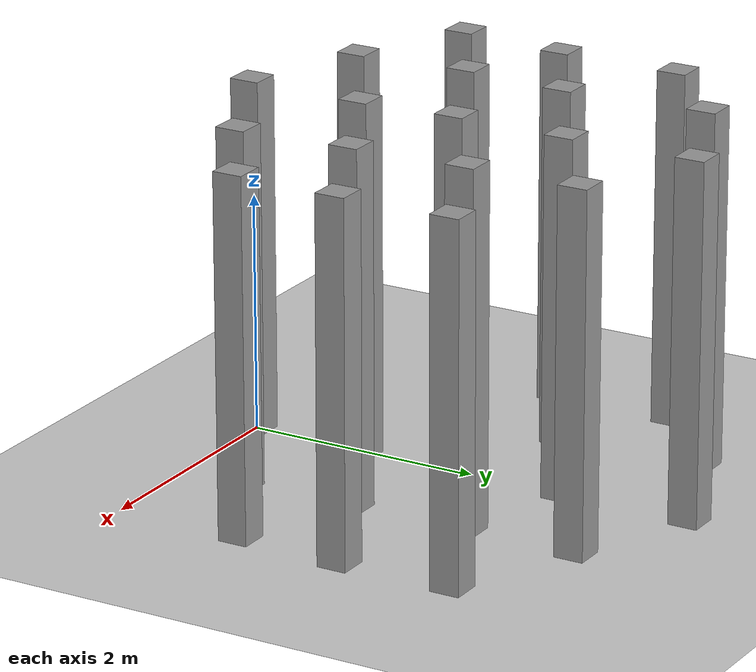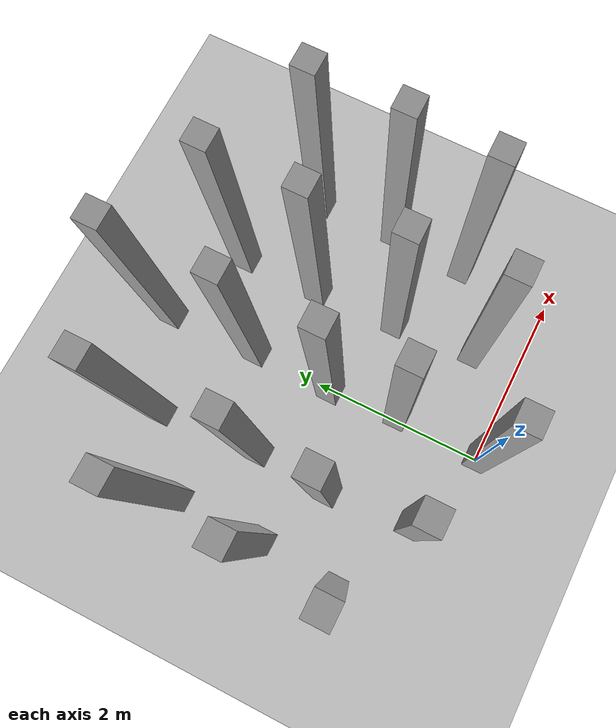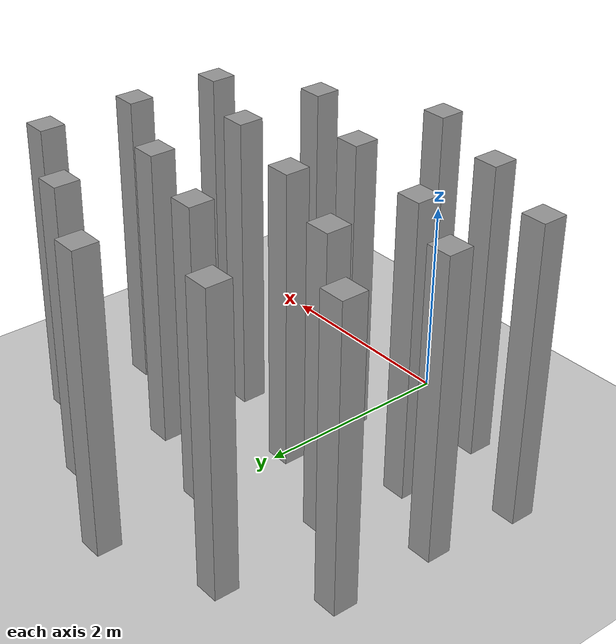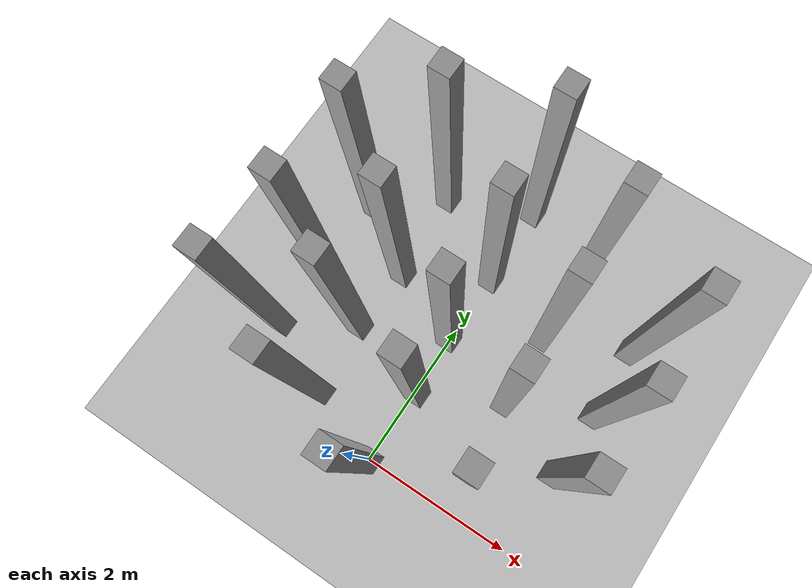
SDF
<sdf version="1.6">
 <world name="default">
  <model name="ground_plane">
   <static>1</static>
   <link name="link">
    <collision name="collision">
     <geometry><plane><normal>0 0 1</normal><size>100 100</size></plane></geometry>
     <surface><friction><ode><mu>100</mu><mu2>50</mu2></ode></friction></surface>
    </collision>
    <visual name="visual">
     <cast_shadows>0</cast_shadows>
     <geometry><plane><normal>0 0 1</normal><size>100 100</size></plane></geometry>
     <material>
      <script><uri>file://media/materials/scripts/gazebo.material</uri><name>Gazebo/Grey</name></script>
     </material>
    </visual>
   </link>
  </model>
  <model name="box_2">
   <link name="link">
    <pose>0 0 1 0 -0 0</pose>
    <inertial>
     <mass>1</mass>
     <inertia><ixx>5.16667</ixx><ixy>0</ixy><ixz>0</ixz><iyy>5.16667</iyy><iyz>0</iyz><izz>5.16667</izz></inertia>
     <pose>0 0 1 0 -0 0</pose>
    </inertial>
    <visual name="ModelPreview_4::link::visual_1">
     <geometry><box><size>0.25 0.25 3</size></box></geometry>
     <material>
      <script><name>Gazebo/Grey</name><uri>file://media/materials/scripts/gazebo.material</uri></script>
      <ambient>0.3 0.3 0.3 1</ambient>
      <diffuse>0.7 0.7 0.7 1</diffuse>
      <specular>0.01 0.01 0.01 1</specular>
      <emissive>0 0 0 1</emissive>
      <shader type="vertex"><normal_map>__default__</normal_map></shader>
     </material>
    </visual>
    <visual name="visual">
     <geometry><box><size>0.25 0.25 3</size></box></geometry>
     <material>
      <script><name>Gazebo/Grey</name><uri>file://media/materials/scripts/gazebo.material</uri></script>
      <ambient>0.3 0.3 0.3 1</ambient>
      <diffuse>0.7 0.7 0.7 1</diffuse>
      <specular>0.01 0.01 0.01 1</specular>
      <emissive>0 0 0 1</emissive>
      <shader type="vertex"><normal_map>__default__</normal_map></shader>
     </material>
    </visual>
    <collision name="collision">
     <geometry><box><size>0.25 0.25 3</size></box></geometry>
     <surface>
      <friction>
       <ode><mu>1</mu><mu2>1</mu2><fdir1>0 0 0</fdir1><slip1>0</slip1><slip2>0</slip2></ode>
       <torsional>
        <coefficient>1</coefficient>
        <patch_radius>0</patch_radius>
        <surface_radius>0</surface_radius>
        <use_patch_radius>1</use_patch_radius>
        <ode><slip>0</slip></ode>
       </torsional>
      </friction>
      <bounce><restitution_coefficient>0</restitution_coefficient><threshold>1e+06</threshold></bounce>
      <contact>
       <collide_without_contact>0</collide_without_contact>
       <collide_without_contact_bitmask>1</collide_without_contact_bitmask>
       <collide_bitmask>1</collide_bitmask>
       <ode>
        <soft_cfm>0</soft_cfm>
        <soft_erp>0.2</soft_erp>
        <kp>1e+13</kp>
        <kd>1</kd>
        <max_vel>0.01</max_vel>
        <min_depth>0</min_depth>
       </ode>
       <bullet>
        <split_impulse>1</split_impulse>
        <split_impulse_penetration_threshold>-0.01</split_impulse_penetration_threshold>
        <soft_cfm>0</soft_cfm>
        <soft_erp>0.2</soft_erp>
        <kp>1e+13</kp>
        <kd>1</kd>
       </bullet>
      </contact>
     </surface>
    </collision>
   </link>
   <static>0</static>
   <pose>0.016632 0.002544 0.500001 2e-06 -6e-06 -0.000172</pose>
  </model>
  <model name="box_2_7">
   <link name="link">
    <pose>0 0 1 0 -0 0</pose>
    <inertial>
     <mass>1</mass>
     <inertia><ixx>5.16667</ixx><ixy>0</ixy><ixz>0</ixz><iyy>5.16667</iyy><iyz>0</iyz><izz>5.16667</izz></inertia>
     <pose>0 0 1 0 -0 0</pose>
    </inertial>
    <visual name="ModelPreview_4::link::visual_1">
     <geometry><box><size>0.25 0.25 3</size></box></geometry>
     <material>
      <script><name>Gazebo/Grey</name><uri>file://media/materials/scripts/gazebo.material</uri></script>
      <ambient>0.3 0.3 0.3 1</ambient>
      <diffuse>0.7 0.7 0.7 1</diffuse>
      <specular>0.01 0.01 0.01 1</specular>
      <emissive>0 0 0 1</emissive>
      <shader type="vertex"><normal_map>__default__</normal_map></shader>
     </material>
    </visual>
    <visual name="visual">
     <geometry><box><size>0.25 0.25 3</size></box></geometry>
     <material>
      <script><name>Gazebo/Grey</name><uri>file://media/materials/scripts/gazebo.material</uri></script>
      <ambient>0.3 0.3 0.3 1</ambient>
      <diffuse>0.7 0.7 0.7 1</diffuse>
      <specular>0.01 0.01 0.01 1</specular>
      <emissive>0 0 0 1</emissive>
      <shader type="vertex"><normal_map>__default__</normal_map></shader>
     </material>
    </visual>
    <collision name="collision">
     <geometry><box><size>0.25 0.25 3</size></box></geometry>
     <surface>
      <friction>
       <ode><mu>1</mu><mu2>1</mu2><fdir1>0 0 0</fdir1><slip1>0</slip1><slip2>0</slip2></ode>
       <torsional>
        <coefficient>1</coefficient>
        <patch_radius>0</patch_radius>
        <surface_radius>0</surface_radius>
        <use_patch_radius>1</use_patch_radius>
        <ode><slip>0</slip></ode>
       </torsional>
      </friction>
      <bounce><restitution_coefficient>0</restitution_coefficient><threshold>1e+06</threshold></bounce>
      <contact>
       <collide_without_contact>0</collide_without_contact>
       <collide_without_contact_bitmask>1</collide_without_contact_bitmask>
       <collide_bitmask>1</collide_bitmask>
       <ode>
        <soft_cfm>0</soft_cfm>
        <soft_erp>0.2</soft_erp>
        <kp>1e+13</kp>
        <kd>1</kd>
        <max_vel>0.01</max_vel>
        <min_depth>0</min_depth>
       </ode>
       <bullet>
        <split_impulse>1</split_impulse>
        <split_impulse_penetration_threshold>-0.01</split_impulse_penetration_threshold>
        <soft_cfm>0</soft_cfm>
        <soft_erp>0.2</soft_erp>
        <kp>1e+13</kp>
        <kd>1</kd>
       </bullet>
      </contact>
     </surface>
    </collision>
   </link>
   <static>0</static>
   <pose>0.048347 1.01829 0.5 -1e-06 -0 -0.000146</pose>
  </model>
  <model name="box_2_8">
   <link name="link">
    <pose>0 0 1 0 -0 0</pose>
    <inertial>
     <mass>1</mass>
     <inertia><ixx>5.16667</ixx><ixy>0</ixy><ixz>0</ixz><iyy>5.16667</iyy><iyz>0</iyz><izz>5.16667</izz></inertia>
     <pose>0 0 1 0 -0 0</pose>
    </inertial>
    <visual name="ModelPreview_4::link::visual_1">
     <geometry><box><size>0.25 0.25 3</size></box></geometry>
     <material>
      <script><name>Gazebo/Grey</name><uri>file://media/materials/scripts/gazebo.material</uri></script>
      <ambient>0.3 0.3 0.3 1</ambient>
      <diffuse>0.7 0.7 0.7 1</diffuse>
      <specular>0.01 0.01 0.01 1</specular>
      <emissive>0 0 0 1</emissive>
      <shader type="vertex"><normal_map>__default__</normal_map></shader>
     </material>
    </visual>
    <visual name="visual">
     <geometry><box><size>0.25 0.25 3</size></box></geometry>
     <material>
      <script><name>Gazebo/Grey</name><uri>file://media/materials/scripts/gazebo.material</uri></script>
      <ambient>0.3 0.3 0.3 1</ambient>
      <diffuse>0.7 0.7 0.7 1</diffuse>
      <specular>0.01 0.01 0.01 1</specular>
      <emissive>0 0 0 1</emissive>
      <shader type="vertex"><normal_map>__default__</normal_map></shader>
     </material>
    </visual>
    <collision name="collision">
     <geometry><box><size>0.25 0.25 3</size></box></geometry>
     <surface>
      <friction>
       <ode><mu>1</mu><mu2>1</mu2><fdir1>0 0 0</fdir1><slip1>0</slip1><slip2>0</slip2></ode>
       <torsional>
        <coefficient>1</coefficient>
        <patch_radius>0</patch_radius>
        <surface_radius>0</surface_radius>
        <use_patch_radius>1</use_patch_radius>
        <ode><slip>0</slip></ode>
       </torsional>
      </friction>
      <bounce><restitution_coefficient>0</restitution_coefficient><threshold>1e+06</threshold></bounce>
      <contact>
       <collide_without_contact>0</collide_without_contact>
       <collide_without_contact_bitmask>1</collide_without_contact_bitmask>
       <collide_bitmask>1</collide_bitmask>
       <ode>
        <soft_cfm>0</soft_cfm>
        <soft_erp>0.2</soft_erp>
        <kp>1e+13</kp>
        <kd>1</kd>
        <max_vel>0.01</max_vel>
        <min_depth>0</min_depth>
       </ode>
       <bullet>
        <split_impulse>1</split_impulse>
        <split_impulse_penetration_threshold>-0.01</split_impulse_penetration_threshold>
        <soft_cfm>0</soft_cfm>
        <soft_erp>0.2</soft_erp>
        <kp>1e+13</kp>
        <kd>1</kd>
       </bullet>
      </contact>
     </surface>
    </collision>
   </link>
   <static>0</static>
   <pose>-0.013398 1.84367 0.500001 4e-06 1e-06 -0.00019</pose>
  </model>
  <model name="box_2_9">
   <link name="link">
    <pose>0 0 1 0 -0 0</pose>
    <inertial>
     <mass>1</mass>
     <inertia><ixx>5.16667</ixx><ixy>0</ixy><ixz>0</ixz><iyy>5.16667</iyy><iyz>0</iyz><izz>5.16667</izz></inertia>
     <pose>0 0 1 0 -0 0</pose>
    </inertial>
    <visual name="ModelPreview_4::link::visual_1">
     <geometry><box><size>0.25 0.25 3</size></box></geometry>
     <material>
      <script><name>Gazebo/Grey</name><uri>file://media/materials/scripts/gazebo.material</uri></script>
      <ambient>0.3 0.3 0.3 1</ambient>
      <diffuse>0.7 0.7 0.7 1</diffuse>
      <specular>0.01 0.01 0.01 1</specular>
      <emissive>0 0 0 1</emissive>
      <shader type="vertex"><normal_map>__default__</normal_map></shader>
     </material>
    </visual>
    <visual name="visual">
     <geometry><box><size>0.25 0.25 3</size></box></geometry>
     <material>
      <script><name>Gazebo/Grey</name><uri>file://media/materials/scripts/gazebo.material</uri></script>
      <ambient>0.3 0.3 0.3 1</ambient>
      <diffuse>0.7 0.7 0.7 1</diffuse>
      <specular>0.01 0.01 0.01 1</specular>
      <emissive>0 0 0 1</emissive>
      <shader type="vertex"><normal_map>__default__</normal_map></shader>
     </material>
    </visual>
    <collision name="collision">
     <geometry><box><size>0.25 0.25 3</size></box></geometry>
     <surface>
      <friction>
       <ode><mu>1</mu><mu2>1</mu2><fdir1>0 0 0</fdir1><slip1>0</slip1><slip2>0</slip2></ode>
       <torsional>
        <coefficient>1</coefficient>
        <patch_radius>0</patch_radius>
        <surface_radius>0</surface_radius>
        <use_patch_radius>1</use_patch_radius>
        <ode><slip>0</slip></ode>
       </torsional>
      </friction>
      <bounce><restitution_coefficient>0</restitution_coefficient><threshold>1e+06</threshold></bounce>
      <contact>
       <collide_without_contact>0</collide_without_contact>
       <collide_without_contact_bitmask>1</collide_without_contact_bitmask>
       <collide_bitmask>1</collide_bitmask>
       <ode>
        <soft_cfm>0</soft_cfm>
        <soft_erp>0.2</soft_erp>
        <kp>1e+13</kp>
        <kd>1</kd>
        <max_vel>0.01</max_vel>
        <min_depth>0</min_depth>
       </ode>
       <bullet>
        <split_impulse>1</split_impulse>
        <split_impulse_penetration_threshold>-0.01</split_impulse_penetration_threshold>
        <soft_cfm>0</soft_cfm>
        <soft_erp>0.2</soft_erp>
        <kp>1e+13</kp>
        <kd>1</kd>
       </bullet>
      </contact>
     </surface>
    </collision>
   </link>
   <static>0</static>
   <pose>0.00864 2.82554 0.500002 1.5e-05 -1e-06 -0.000131</pose>
  </model>
  <model name="box_2_10">
   <link name="link">
    <pose>0 0 1 0 -0 0</pose>
    <inertial>
     <mass>1</mass>
     <inertia><ixx>5.16667</ixx><ixy>0</ixy><ixz>0</ixz><iyy>5.16667</iyy><iyz>0</iyz><izz>5.16667</izz></inertia>
     <pose>0 0 1 0 -0 0</pose>
    </inertial>
    <visual name="ModelPreview_4::link::visual_1">
     <geometry><box><size>0.25 0.25 3</size></box></geometry>
     <material>
      <script><name>Gazebo/Grey</name><uri>file://media/materials/scripts/gazebo.material</uri></script>
      <ambient>0.3 0.3 0.3 1</ambient>
      <diffuse>0.7 0.7 0.7 1</diffuse>
      <specular>0.01 0.01 0.01 1</specular>
      <emissive>0 0 0 1</emissive>
      <shader type="vertex"><normal_map>__default__</normal_map></shader>
     </material>
    </visual>
    <visual name="visual">
     <geometry><box><size>0.25 0.25 3</size></box></geometry>
     <material>
      <script><name>Gazebo/Grey</name><uri>file://media/materials/scripts/gazebo.material</uri></script>
      <ambient>0.3 0.3 0.3 1</ambient>
      <diffuse>0.7 0.7 0.7 1</diffuse>
      <specular>0.01 0.01 0.01 1</specular>
      <emissive>0 0 0 1</emissive>
      <shader type="vertex"><normal_map>__default__</normal_map></shader>
     </material>
    </visual>
    <collision name="collision">
     <geometry><box><size>0.25 0.25 3</size></box></geometry>
     <surface>
      <friction>
       <ode><mu>1</mu><mu2>1</mu2><fdir1>0 0 0</fdir1><slip1>0</slip1><slip2>0</slip2></ode>
       <torsional>
        <coefficient>1</coefficient>
        <patch_radius>0</patch_radius>
        <surface_radius>0</surface_radius>
        <use_patch_radius>1</use_patch_radius>
        <ode><slip>0</slip></ode>
       </torsional>
      </friction>
      <bounce><restitution_coefficient>0</restitution_coefficient><threshold>1e+06</threshold></bounce>
      <contact>
       <collide_without_contact>0</collide_without_contact>
       <collide_without_contact_bitmask>1</collide_without_contact_bitmask>
       <collide_bitmask>1</collide_bitmask>
       <ode>
        <soft_cfm>0</soft_cfm>
        <soft_erp>0.2</soft_erp>
        <kp>1e+13</kp>
        <kd>1</kd>
        <max_vel>0.01</max_vel>
        <min_depth>0</min_depth>
       </ode>
       <bullet>
        <split_impulse>1</split_impulse>
        <split_impulse_penetration_threshold>-0.01</split_impulse_penetration_threshold>
        <soft_cfm>0</soft_cfm>
        <soft_erp>0.2</soft_erp>
        <kp>1e+13</kp>
        <kd>1</kd>
       </bullet>
      </contact>
     </surface>
    </collision>
   </link>
   <static>0</static>
   <pose>-0.018716 3.93322 0.5 0 -2e-06 -0.000108</pose>
  </model>
  <model name="box_2_16">
   <link name="link">
    <pose>0 0 1 0 -0 0</pose>
    <inertial>
     <mass>1</mass>
     <inertia><ixx>5.16667</ixx><ixy>0</ixy><ixz>0</ixz><iyy>5.16667</iyy><iyz>0</iyz><izz>5.16667</izz></inertia>
     <pose>0 0 1 0 -0 0</pose>
    </inertial>
    <visual name="ModelPreview_4::link::visual_1">
     <geometry><box><size>0.25 0.25 3</size></box></geometry>
     <material>
      <script><name>Gazebo/Grey</name><uri>file://media/materials/scripts/gazebo.material</uri></script>
      <ambient>0.3 0.3 0.3 1</ambient>
      <diffuse>0.7 0.7 0.7 1</diffuse>
      <specular>0.01 0.01 0.01 1</specular>
      <emissive>0 0 0 1</emissive>
      <shader type="vertex"><normal_map>__default__</normal_map></shader>
     </material>
    </visual>
    <visual name="visual">
     <geometry><box><size>0.25 0.25 3</size></box></geometry>
     <material>
      <script><name>Gazebo/Grey</name><uri>file://media/materials/scripts/gazebo.material</uri></script>
      <ambient>0.3 0.3 0.3 1</ambient>
      <diffuse>0.7 0.7 0.7 1</diffuse>
      <specular>0.01 0.01 0.01 1</specular>
      <emissive>0 0 0 1</emissive>
      <shader type="vertex"><normal_map>__default__</normal_map></shader>
     </material>
    </visual>
    <collision name="collision">
     <geometry><box><size>0.25 0.25 3</size></box></geometry>
     <surface>
      <friction>
       <ode><mu>1</mu><mu2>1</mu2><fdir1>0 0 0</fdir1><slip1>0</slip1><slip2>0</slip2></ode>
       <torsional>
        <coefficient>1</coefficient>
        <patch_radius>0</patch_radius>
        <surface_radius>0</surface_radius>
        <use_patch_radius>1</use_patch_radius>
        <ode><slip>0</slip></ode>
       </torsional>
      </friction>
      <bounce><restitution_coefficient>0</restitution_coefficient><threshold>1e+06</threshold></bounce>
      <contact>
       <collide_without_contact>0</collide_without_contact>
       <collide_without_contact_bitmask>1</collide_without_contact_bitmask>
       <collide_bitmask>1</collide_bitmask>
       <ode>
        <soft_cfm>0</soft_cfm>
        <soft_erp>0.2</soft_erp>
        <kp>1e+13</kp>
        <kd>1</kd>
        <max_vel>0.01</max_vel>
        <min_depth>0</min_depth>
       </ode>
       <bullet>
        <split_impulse>1</split_impulse>
        <split_impulse_penetration_threshold>-0.01</split_impulse_penetration_threshold>
        <soft_cfm>0</soft_cfm>
        <soft_erp>0.2</soft_erp>
        <kp>1e+13</kp>
        <kd>1</kd>
       </bullet>
      </contact>
     </surface>
    </collision>
   </link>
   <static>0</static>
   <pose>1.11047 0.557185 0.5 0 2e-06 -9.3e-05</pose>
  </model>
  <model name="box_2_17">
   <link name="link">
    <pose>0 0 1 0 -0 0</pose>
    <inertial>
     <mass>1</mass>
     <inertia><ixx>5.16667</ixx><ixy>0</ixy><ixz>0</ixz><iyy>5.16667</iyy><iyz>0</iyz><izz>5.16667</izz></inertia>
     <pose>0 0 1 0 -0 0</pose>
    </inertial>
    <visual name="ModelPreview_4::link::visual_1">
     <geometry><box><size>0.25 0.25 3</size></box></geometry>
     <material>
      <script><name>Gazebo/Grey</name><uri>file://media/materials/scripts/gazebo.material</uri></script>
      <ambient>0.3 0.3 0.3 1</ambient>
      <diffuse>0.7 0.7 0.7 1</diffuse>
      <specular>0.01 0.01 0.01 1</specular>
      <emissive>0 0 0 1</emissive>
      <shader type="vertex"><normal_map>__default__</normal_map></shader>
     </material>
    </visual>
    <visual name="visual">
     <geometry><box><size>0.25 0.25 3</size></box></geometry>
     <material>
      <script><name>Gazebo/Grey</name><uri>file://media/materials/scripts/gazebo.material</uri></script>
      <ambient>0.3 0.3 0.3 1</ambient>
      <diffuse>0.7 0.7 0.7 1</diffuse>
      <specular>0.01 0.01 0.01 1</specular>
      <emissive>0 0 0 1</emissive>
      <shader type="vertex"><normal_map>__default__</normal_map></shader>
     </material>
    </visual>
    <collision name="collision">
     <geometry><box><size>0.25 0.25 3</size></box></geometry>
     <surface>
      <friction>
       <ode><mu>1</mu><mu2>1</mu2><fdir1>0 0 0</fdir1><slip1>0</slip1><slip2>0</slip2></ode>
       <torsional>
        <coefficient>1</coefficient>
        <patch_radius>0</patch_radius>
        <surface_radius>0</surface_radius>
        <use_patch_radius>1</use_patch_radius>
        <ode><slip>0</slip></ode>
       </torsional>
      </friction>
      <bounce><restitution_coefficient>0</restitution_coefficient><threshold>1e+06</threshold></bounce>
      <contact>
       <collide_without_contact>0</collide_without_contact>
       <collide_without_contact_bitmask>1</collide_without_contact_bitmask>
       <collide_bitmask>1</collide_bitmask>
       <ode>
        <soft_cfm>0</soft_cfm>
        <soft_erp>0.2</soft_erp>
        <kp>1e+13</kp>
        <kd>1</kd>
        <max_vel>0.01</max_vel>
        <min_depth>0</min_depth>
       </ode>
       <bullet>
        <split_impulse>1</split_impulse>
        <split_impulse_penetration_threshold>-0.01</split_impulse_penetration_threshold>
        <soft_cfm>0</soft_cfm>
        <soft_erp>0.2</soft_erp>
        <kp>1e+13</kp>
        <kd>1</kd>
       </bullet>
      </contact>
     </surface>
    </collision>
   </link>
   <static>0</static>
   <pose>1.03676 1.52247 0.500001 -9e-06 3e-06 -0.000119</pose>
  </model>
  <model name="box_2_18">
   <link name="link">
    <pose>0 0 1 0 -0 0</pose>
    <inertial>
     <mass>1</mass>
     <inertia><ixx>5.16667</ixx><ixy>0</ixy><ixz>0</ixz><iyy>5.16667</iyy><iyz>0</iyz><izz>5.16667</izz></inertia>
     <pose>0 0 1 0 -0 0</pose>
    </inertial>
    <visual name="ModelPreview_4::link::visual_1">
     <geometry><box><size>0.25 0.25 3</size></box></geometry>
     <material>
      <script><name>Gazebo/Grey</name><uri>file://media/materials/scripts/gazebo.material</uri></script>
      <ambient>0.3 0.3 0.3 1</ambient>
      <diffuse>0.7 0.7 0.7 1</diffuse>
      <specular>0.01 0.01 0.01 1</specular>
      <emissive>0 0 0 1</emissive>
      <shader type="vertex"><normal_map>__default__</normal_map></shader>
     </material>
    </visual>
    <visual name="visual">
     <geometry><box><size>0.25 0.25 3</size></box></geometry>
     <material>
      <script><name>Gazebo/Grey</name><uri>file://media/materials/scripts/gazebo.material</uri></script>
      <ambient>0.3 0.3 0.3 1</ambient>
      <diffuse>0.7 0.7 0.7 1</diffuse>
      <specular>0.01 0.01 0.01 1</specular>
      <emissive>0 0 0 1</emissive>
      <shader type="vertex"><normal_map>__default__</normal_map></shader>
     </material>
    </visual>
    <collision name="collision">
     <geometry><box><size>0.25 0.25 3</size></box></geometry>
     <surface>
      <friction>
       <ode><mu>1</mu><mu2>1</mu2><fdir1>0 0 0</fdir1><slip1>0</slip1><slip2>0</slip2></ode>
       <torsional>
        <coefficient>1</coefficient>
        <patch_radius>0</patch_radius>
        <surface_radius>0</surface_radius>
        <use_patch_radius>1</use_patch_radius>
        <ode><slip>0</slip></ode>
       </torsional>
      </friction>
      <bounce><restitution_coefficient>0</restitution_coefficient><threshold>1e+06</threshold></bounce>
      <contact>
       <collide_without_contact>0</collide_without_contact>
       <collide_without_contact_bitmask>1</collide_without_contact_bitmask>
       <collide_bitmask>1</collide_bitmask>
       <ode>
        <soft_cfm>0</soft_cfm>
        <soft_erp>0.2</soft_erp>
        <kp>1e+13</kp>
        <kd>1</kd>
        <max_vel>0.01</max_vel>
        <min_depth>0</min_depth>
       </ode>
       <bullet>
        <split_impulse>1</split_impulse>
        <split_impulse_penetration_threshold>-0.01</split_impulse_penetration_threshold>
        <soft_cfm>0</soft_cfm>
        <soft_erp>0.2</soft_erp>
        <kp>1e+13</kp>
        <kd>1</kd>
       </bullet>
      </contact>
     </surface>
    </collision>
   </link>
   <static>0</static>
   <pose>0.994585 2.51688 0.500001 -8e-06 1e-06 -0.000181</pose>
  </model>
  <model name="box_2_19">
   <link name="link">
    <pose>0 0 1 0 -0 0</pose>
    <inertial>
     <mass>1</mass>
     <inertia><ixx>5.16667</ixx><ixy>0</ixy><ixz>0</ixz><iyy>5.16667</iyy><iyz>0</iyz><izz>5.16667</izz></inertia>
     <pose>0 0 1 0 -0 0</pose>
    </inertial>
    <visual name="ModelPreview_4::link::visual_1">
     <geometry><box><size>0.25 0.25 3</size></box></geometry>
     <material>
      <script><name>Gazebo/Grey</name><uri>file://media/materials/scripts/gazebo.material</uri></script>
      <ambient>0.3 0.3 0.3 1</ambient>
      <diffuse>0.7 0.7 0.7 1</diffuse>
      <specular>0.01 0.01 0.01 1</specular>
      <emissive>0 0 0 1</emissive>
      <shader type="vertex"><normal_map>__default__</normal_map></shader>
     </material>
    </visual>
    <visual name="visual">
     <geometry><box><size>0.25 0.25 3</size></box></geometry>
     <material>
      <script><name>Gazebo/Grey</name><uri>file://media/materials/scripts/gazebo.material</uri></script>
      <ambient>0.3 0.3 0.3 1</ambient>
      <diffuse>0.7 0.7 0.7 1</diffuse>
      <specular>0.01 0.01 0.01 1</specular>
      <emissive>0 0 0 1</emissive>
      <shader type="vertex"><normal_map>__default__</normal_map></shader>
     </material>
    </visual>
    <collision name="collision">
     <geometry><box><size>0.25 0.25 3</size></box></geometry>
     <surface>
      <friction>
       <ode><mu>1</mu><mu2>1</mu2><fdir1>0 0 0</fdir1><slip1>0</slip1><slip2>0</slip2></ode>
       <torsional>
        <coefficient>1</coefficient>
        <patch_radius>0</patch_radius>
        <surface_radius>0</surface_radius>
        <use_patch_radius>1</use_patch_radius>
        <ode><slip>0</slip></ode>
       </torsional>
      </friction>
      <bounce><restitution_coefficient>0</restitution_coefficient><threshold>1e+06</threshold></bounce>
      <contact>
       <collide_without_contact>0</collide_without_contact>
       <collide_without_contact_bitmask>1</collide_without_contact_bitmask>
       <collide_bitmask>1</collide_bitmask>
       <ode>
        <soft_cfm>0</soft_cfm>
        <soft_erp>0.2</soft_erp>
        <kp>1e+13</kp>
        <kd>1</kd>
        <max_vel>0.01</max_vel>
        <min_depth>0</min_depth>
       </ode>
       <bullet>
        <split_impulse>1</split_impulse>
        <split_impulse_penetration_threshold>-0.01</split_impulse_penetration_threshold>
        <soft_cfm>0</soft_cfm>
        <soft_erp>0.2</soft_erp>
        <kp>1e+13</kp>
        <kd>1</kd>
       </bullet>
      </contact>
     </surface>
    </collision>
   </link>
   <static>0</static>
   <pose>0.987452 3.4768 0.500001 9e-06 0 -0.000152</pose>
  </model>
  <model name="box_2_20">
   <link name="link">
    <pose>0 0 1 0 -0 0</pose>
    <inertial>
     <mass>1</mass>
     <inertia><ixx>5.16667</ixx><ixy>0</ixy><ixz>0</ixz><iyy>5.16667</iyy><iyz>0</iyz><izz>5.16667</izz></inertia>
     <pose>0 0 1 0 -0 0</pose>
    </inertial>
    <visual name="ModelPreview_4::link::visual_1">
     <geometry><box><size>0.25 0.25 3</size></box></geometry>
     <material>
      <script><name>Gazebo/Grey</name><uri>file://media/materials/scripts/gazebo.material</uri></script>
      <ambient>0.3 0.3 0.3 1</ambient>
      <diffuse>0.7 0.7 0.7 1</diffuse>
      <specular>0.01 0.01 0.01 1</specular>
      <emissive>0 0 0 1</emissive>
      <shader type="vertex"><normal_map>__default__</normal_map></shader>
     </material>
    </visual>
    <visual name="visual">
     <geometry><box><size>0.25 0.25 3</size></box></geometry>
     <material>
      <script><name>Gazebo/Grey</name><uri>file://media/materials/scripts/gazebo.material</uri></script>
      <ambient>0.3 0.3 0.3 1</ambient>
      <diffuse>0.7 0.7 0.7 1</diffuse>
      <specular>0.01 0.01 0.01 1</specular>
      <emissive>0 0 0 1</emissive>
      <shader type="vertex"><normal_map>__default__</normal_map></shader>
     </material>
    </visual>
    <collision name="collision">
     <geometry><box><size>0.25 0.25 3</size></box></geometry>
     <surface>
      <friction>
       <ode><mu>1</mu><mu2>1</mu2><fdir1>0 0 0</fdir1><slip1>0</slip1><slip2>0</slip2></ode>
       <torsional>
        <coefficient>1</coefficient>
        <patch_radius>0</patch_radius>
        <surface_radius>0</surface_radius>
        <use_patch_radius>1</use_patch_radius>
        <ode><slip>0</slip></ode>
       </torsional>
      </friction>
      <bounce><restitution_coefficient>0</restitution_coefficient><threshold>1e+06</threshold></bounce>
      <contact>
       <collide_without_contact>0</collide_without_contact>
       <collide_without_contact_bitmask>1</collide_without_contact_bitmask>
       <collide_bitmask>1</collide_bitmask>
       <ode>
        <soft_cfm>0</soft_cfm>
        <soft_erp>0.2</soft_erp>
        <kp>1e+13</kp>
        <kd>1</kd>
        <max_vel>0.01</max_vel>
        <min_depth>0</min_depth>
       </ode>
       <bullet>
        <split_impulse>1</split_impulse>
        <split_impulse_penetration_threshold>-0.01</split_impulse_penetration_threshold>
        <soft_cfm>0</soft_cfm>
        <soft_erp>0.2</soft_erp>
        <kp>1e+13</kp>
        <kd>1</kd>
       </bullet>
      </contact>
     </surface>
    </collision>
   </link>
   <static>0</static>
   <pose>-1.09874 3.47591 0.5 -3e-06 -0 -0.00021</pose>
  </model>
  <model name="box_2_21">
   <link name="link">
    <pose>0 0 1 0 -0 0</pose>
    <inertial>
     <mass>1</mass>
     <inertia><ixx>5.16667</ixx><ixy>0</ixy><ixz>0</ixz><iyy>5.16667</iyy><iyz>0</iyz><izz>5.16667</izz></inertia>
     <pose>0 0 1 0 -0 0</pose>
    </inertial>
    <visual name="ModelPreview_4::link::visual_1">
     <geometry><box><size>0.25 0.25 3</size></box></geometry>
     <material>
      <script><name>Gazebo/Grey</name><uri>file://media/materials/scripts/gazebo.material</uri></script>
      <ambient>0.3 0.3 0.3 1</ambient>
      <diffuse>0.7 0.7 0.7 1</diffuse>
      <specular>0.01 0.01 0.01 1</specular>
      <emissive>0 0 0 1</emissive>
      <shader type="vertex"><normal_map>__default__</normal_map></shader>
     </material>
    </visual>
    <visual name="visual">
     <geometry><box><size>0.25 0.25 3</size></box></geometry>
     <material>
      <script><name>Gazebo/Grey</name><uri>file://media/materials/scripts/gazebo.material</uri></script>
      <ambient>0.3 0.3 0.3 1</ambient>
      <diffuse>0.7 0.7 0.7 1</diffuse>
      <specular>0.01 0.01 0.01 1</specular>
      <emissive>0 0 0 1</emissive>
      <shader type="vertex"><normal_map>__default__</normal_map></shader>
     </material>
    </visual>
    <collision name="collision">
     <geometry><box><size>0.25 0.25 3</size></box></geometry>
     <surface>
      <friction>
       <ode><mu>1</mu><mu2>1</mu2><fdir1>0 0 0</fdir1><slip1>0</slip1><slip2>0</slip2></ode>
       <torsional>
        <coefficient>1</coefficient>
        <patch_radius>0</patch_radius>
        <surface_radius>0</surface_radius>
        <use_patch_radius>1</use_patch_radius>
        <ode><slip>0</slip></ode>
       </torsional>
      </friction>
      <bounce><restitution_coefficient>0</restitution_coefficient><threshold>1e+06</threshold></bounce>
      <contact>
       <collide_without_contact>0</collide_without_contact>
       <collide_without_contact_bitmask>1</collide_without_contact_bitmask>
       <collide_bitmask>1</collide_bitmask>
       <ode>
        <soft_cfm>0</soft_cfm>
        <soft_erp>0.2</soft_erp>
        <kp>1e+13</kp>
        <kd>1</kd>
        <max_vel>0.01</max_vel>
        <min_depth>0</min_depth>
       </ode>
       <bullet>
        <split_impulse>1</split_impulse>
        <split_impulse_penetration_threshold>-0.01</split_impulse_penetration_threshold>
        <soft_cfm>0</soft_cfm>
        <soft_erp>0.2</soft_erp>
        <kp>1e+13</kp>
        <kd>1</kd>
       </bullet>
      </contact>
     </surface>
    </collision>
   </link>
   <static>0</static>
   <pose>-1.01382 2.25078 0.5 -0 1e-06 -0.000139</pose>
  </model>
  <model name="box_2_22">
   <link name="link">
    <pose>0 0 1 0 -0 0</pose>
    <inertial>
     <mass>1</mass>
     <inertia><ixx>5.16667</ixx><ixy>0</ixy><ixz>0</ixz><iyy>5.16667</iyy><iyz>0</iyz><izz>5.16667</izz></inertia>
     <pose>0 0 1 0 -0 0</pose>
    </inertial>
    <visual name="ModelPreview_4::link::visual_1">
     <geometry><box><size>0.25 0.25 3</size></box></geometry>
     <material>
      <script><name>Gazebo/Grey</name><uri>file://media/materials/scripts/gazebo.material</uri></script>
      <ambient>0.3 0.3 0.3 1</ambient>
      <diffuse>0.7 0.7 0.7 1</diffuse>
      <specular>0.01 0.01 0.01 1</specular>
      <emissive>0 0 0 1</emissive>
      <shader type="vertex"><normal_map>__default__</normal_map></shader>
     </material>
    </visual>
    <visual name="visual">
     <geometry><box><size>0.25 0.25 3</size></box></geometry>
     <material>
      <script><name>Gazebo/Grey</name><uri>file://media/materials/scripts/gazebo.material</uri></script>
      <ambient>0.3 0.3 0.3 1</ambient>
      <diffuse>0.7 0.7 0.7 1</diffuse>
      <specular>0.01 0.01 0.01 1</specular>
      <emissive>0 0 0 1</emissive>
      <shader type="vertex"><normal_map>__default__</normal_map></shader>
     </material>
    </visual>
    <collision name="collision">
     <geometry><box><size>0.25 0.25 3</size></box></geometry>
     <surface>
      <friction>
       <ode><mu>1</mu><mu2>1</mu2><fdir1>0 0 0</fdir1><slip1>0</slip1><slip2>0</slip2></ode>
       <torsional>
        <coefficient>1</coefficient>
        <patch_radius>0</patch_radius>
        <surface_radius>0</surface_radius>
        <use_patch_radius>1</use_patch_radius>
        <ode><slip>0</slip></ode>
       </torsional>
      </friction>
      <bounce><restitution_coefficient>0</restitution_coefficient><threshold>1e+06</threshold></bounce>
      <contact>
       <collide_without_contact>0</collide_without_contact>
       <collide_without_contact_bitmask>1</collide_without_contact_bitmask>
       <collide_bitmask>1</collide_bitmask>
       <ode>
        <soft_cfm>0</soft_cfm>
        <soft_erp>0.2</soft_erp>
        <kp>1e+13</kp>
        <kd>1</kd>
        <max_vel>0.01</max_vel>
        <min_depth>0</min_depth>
       </ode>
       <bullet>
        <split_impulse>1</split_impulse>
        <split_impulse_penetration_threshold>-0.01</split_impulse_penetration_threshold>
        <soft_cfm>0</soft_cfm>
        <soft_erp>0.2</soft_erp>
        <kp>1e+13</kp>
        <kd>1</kd>
       </bullet>
      </contact>
     </surface>
    </collision>
   </link>
   <static>0</static>
   <pose>-1.07933 1.34513 0.5 -1e-06 1e-06 -0.000122</pose>
  </model>
  <model name="box_2_23">
   <link name="link">
    <pose>0 0 1 0 -0 0</pose>
    <inertial>
     <mass>1</mass>
     <inertia><ixx>5.16667</ixx><ixy>0</ixy><ixz>0</ixz><iyy>5.16667</iyy><iyz>0</iyz><izz>5.16667</izz></inertia>
     <pose>0 0 1 0 -0 0</pose>
    </inertial>
    <visual name="ModelPreview_4::link::visual_1">
     <geometry><box><size>0.25 0.25 3</size></box></geometry>
     <material>
      <script><name>Gazebo/Grey</name><uri>file://media/materials/scripts/gazebo.material</uri></script>
      <ambient>0.3 0.3 0.3 1</ambient>
      <diffuse>0.7 0.7 0.7 1</diffuse>
      <specular>0.01 0.01 0.01 1</specular>
      <emissive>0 0 0 1</emissive>
      <shader type="vertex"><normal_map>__default__</normal_map></shader>
     </material>
    </visual>
    <visual name="visual">
     <geometry><box><size>0.25 0.25 3</size></box></geometry>
     <material>
      <script><name>Gazebo/Grey</name><uri>file://media/materials/scripts/gazebo.material</uri></script>
      <ambient>0.3 0.3 0.3 1</ambient>
      <diffuse>0.7 0.7 0.7 1</diffuse>
      <specular>0.01 0.01 0.01 1</specular>
      <emissive>0 0 0 1</emissive>
      <shader type="vertex"><normal_map>__default__</normal_map></shader>
     </material>
    </visual>
    <collision name="collision">
     <geometry><box><size>0.25 0.25 3</size></box></geometry>
     <surface>
      <friction>
       <ode><mu>1</mu><mu2>1</mu2><fdir1>0 0 0</fdir1><slip1>0</slip1><slip2>0</slip2></ode>
       <torsional>
        <coefficient>1</coefficient>
        <patch_radius>0</patch_radius>
        <surface_radius>0</surface_radius>
        <use_patch_radius>1</use_patch_radius>
        <ode><slip>0</slip></ode>
       </torsional>
      </friction>
      <bounce><restitution_coefficient>0</restitution_coefficient><threshold>1e+06</threshold></bounce>
      <contact>
       <collide_without_contact>0</collide_without_contact>
       <collide_without_contact_bitmask>1</collide_without_contact_bitmask>
       <collide_bitmask>1</collide_bitmask>
       <ode>
        <soft_cfm>0</soft_cfm>
        <soft_erp>0.2</soft_erp>
        <kp>1e+13</kp>
        <kd>1</kd>
        <max_vel>0.01</max_vel>
        <min_depth>0</min_depth>
       </ode>
       <bullet>
        <split_impulse>1</split_impulse>
        <split_impulse_penetration_threshold>-0.01</split_impulse_penetration_threshold>
        <soft_cfm>0</soft_cfm>
        <soft_erp>0.2</soft_erp>
        <kp>1e+13</kp>
        <kd>1</kd>
       </bullet>
      </contact>
     </surface>
    </collision>
   </link>
   <static>0</static>
   <pose>-0.997237 0.375954 0.5 1e-06 1e-06 -0.000141</pose>
  </model>
  <model name="box_2_28">
   <link name="link">
    <pose>0 0 1 0 -0 0</pose>
    <inertial>
     <mass>1</mass>
     <inertia><ixx>5.16667</ixx><ixy>0</ixy><ixz>0</ixz><iyy>5.16667</iyy><iyz>0</iyz><izz>5.16667</izz></inertia>
     <pose>0 0 1 0 -0 0</pose>
    </inertial>
    <visual name="ModelPreview_4::link::visual_1">
     <geometry><box><size>0.25 0.25 3</size></box></geometry>
     <material>
      <script><name>Gazebo/Grey</name><uri>file://media/materials/scripts/gazebo.material</uri></script>
      <ambient>0.3 0.3 0.3 1</ambient>
      <diffuse>0.7 0.7 0.7 1</diffuse>
      <specular>0.01 0.01 0.01 1</specular>
      <emissive>0 0 0 1</emissive>
      <shader type="vertex"><normal_map>__default__</normal_map></shader>
     </material>
    </visual>
    <visual name="visual">
     <geometry><box><size>0.25 0.25 3</size></box></geometry>
     <material>
      <script><name>Gazebo/Grey</name><uri>file://media/materials/scripts/gazebo.material</uri></script>
      <ambient>0.3 0.3 0.3 1</ambient>
      <diffuse>0.7 0.7 0.7 1</diffuse>
      <specular>0.01 0.01 0.01 1</specular>
      <emissive>0 0 0 1</emissive>
      <shader type="vertex"><normal_map>__default__</normal_map></shader>
     </material>
    </visual>
    <collision name="collision">
     <geometry><box><size>0.25 0.25 3</size></box></geometry>
     <surface>
      <friction>
       <ode><mu>1</mu><mu2>1</mu2><fdir1>0 0 0</fdir1><slip1>0</slip1><slip2>0</slip2></ode>
       <torsional>
        <coefficient>1</coefficient>
        <patch_radius>0</patch_radius>
        <surface_radius>0</surface_radius>
        <use_patch_radius>1</use_patch_radius>
        <ode><slip>0</slip></ode>
       </torsional>
      </friction>
      <bounce><restitution_coefficient>0</restitution_coefficient><threshold>1e+06</threshold></bounce>
      <contact>
       <collide_without_contact>0</collide_without_contact>
       <collide_without_contact_bitmask>1</collide_without_contact_bitmask>
       <collide_bitmask>1</collide_bitmask>
       <ode>
        <soft_cfm>0</soft_cfm>
        <soft_erp>0.2</soft_erp>
        <kp>1e+13</kp>
        <kd>1</kd>
        <max_vel>0.01</max_vel>
        <min_depth>0</min_depth>
       </ode>
       <bullet>
        <split_impulse>1</split_impulse>
        <split_impulse_penetration_threshold>-0.01</split_impulse_penetration_threshold>
        <soft_cfm>0</soft_cfm>
        <soft_erp>0.2</soft_erp>
        <kp>1e+13</kp>
        <kd>1</kd>
       </bullet>
      </contact>
     </surface>
    </collision>
   </link>
   <static>0</static>
   <pose>-1.85426 2.82511 0.500002 -1.3e-05 -0 -0.00013</pose>
  </model>
  <model name="box_2_29">
   <link name="link">
    <pose>0 0 1 0 -0 0</pose>
    <inertial>
     <mass>1</mass>
     <inertia><ixx>5.16667</ixx><ixy>0</ixy><ixz>0</ixz><iyy>5.16667</iyy><iyz>0</iyz><izz>5.16667</izz></inertia>
     <pose>0 0 1 0 -0 0</pose>
    </inertial>
    <visual name="ModelPreview_4::link::visual_1">
     <geometry><box><size>0.25 0.25 3</size></box></geometry>
     <material>
      <script><name>Gazebo/Grey</name><uri>file://media/materials/scripts/gazebo.material</uri></script>
      <ambient>0.3 0.3 0.3 1</ambient>
      <diffuse>0.7 0.7 0.7 1</diffuse>
      <specular>0.01 0.01 0.01 1</specular>
      <emissive>0 0 0 1</emissive>
      <shader type="vertex"><normal_map>__default__</normal_map></shader>
     </material>
    </visual>
    <visual name="visual">
     <geometry><box><size>0.25 0.25 3</size></box></geometry>
     <material>
      <script><name>Gazebo/Grey</name><uri>file://media/materials/scripts/gazebo.material</uri></script>
      <ambient>0.3 0.3 0.3 1</ambient>
      <diffuse>0.7 0.7 0.7 1</diffuse>
      <specular>0.01 0.01 0.01 1</specular>
      <emissive>0 0 0 1</emissive>
      <shader type="vertex"><normal_map>__default__</normal_map></shader>
     </material>
    </visual>
    <collision name="collision">
     <geometry><box><size>0.25 0.25 3</size></box></geometry>
     <surface>
      <friction>
       <ode><mu>1</mu><mu2>1</mu2><fdir1>0 0 0</fdir1><slip1>0</slip1><slip2>0</slip2></ode>
       <torsional>
        <coefficient>1</coefficient>
        <patch_radius>0</patch_radius>
        <surface_radius>0</surface_radius>
        <use_patch_radius>1</use_patch_radius>
        <ode><slip>0</slip></ode>
       </torsional>
      </friction>
      <bounce><restitution_coefficient>0</restitution_coefficient><threshold>1e+06</threshold></bounce>
      <contact>
       <collide_without_contact>0</collide_without_contact>
       <collide_without_contact_bitmask>1</collide_without_contact_bitmask>
       <collide_bitmask>1</collide_bitmask>
       <ode>
        <soft_cfm>0</soft_cfm>
        <soft_erp>0.2</soft_erp>
        <kp>1e+13</kp>
        <kd>1</kd>
        <max_vel>0.01</max_vel>
        <min_depth>0</min_depth>
       </ode>
       <bullet>
        <split_impulse>1</split_impulse>
        <split_impulse_penetration_threshold>-0.01</split_impulse_penetration_threshold>
        <soft_cfm>0</soft_cfm>
        <soft_erp>0.2</soft_erp>
        <kp>1e+13</kp>
        <kd>1</kd>
       </bullet>
      </contact>
     </surface>
    </collision>
   </link>
   <static>0</static>
   <pose>-1.85991 1.76387 0.5 0 0 -0.000132</pose>
  </model>
  <model name="box_2_30">
   <link name="link">
    <pose>0 0 1 0 -0 0</pose>
    <inertial>
     <mass>1</mass>
     <inertia><ixx>5.16667</ixx><ixy>0</ixy><ixz>0</ixz><iyy>5.16667</iyy><iyz>0</iyz><izz>5.16667</izz></inertia>
     <pose>0 0 1 0 -0 0</pose>
    </inertial>
    <visual name="ModelPreview_4::link::visual_1">
     <geometry><box><size>0.25 0.25 3</size></box></geometry>
     <material>
      <script><name>Gazebo/Grey</name><uri>file://media/materials/scripts/gazebo.material</uri></script>
      <ambient>0.3 0.3 0.3 1</ambient>
      <diffuse>0.7 0.7 0.7 1</diffuse>
      <specular>0.01 0.01 0.01 1</specular>
      <emissive>0 0 0 1</emissive>
      <shader type="vertex"><normal_map>__default__</normal_map></shader>
     </material>
    </visual>
    <visual name="visual">
     <geometry><box><size>0.25 0.25 3</size></box></geometry>
     <material>
      <script><name>Gazebo/Grey</name><uri>file://media/materials/scripts/gazebo.material</uri></script>
      <ambient>0.3 0.3 0.3 1</ambient>
      <diffuse>0.7 0.7 0.7 1</diffuse>
      <specular>0.01 0.01 0.01 1</specular>
      <emissive>0 0 0 1</emissive>
      <shader type="vertex"><normal_map>__default__</normal_map></shader>
     </material>
    </visual>
    <collision name="collision">
     <geometry><box><size>0.25 0.25 3</size></box></geometry>
     <surface>
      <friction>
       <ode><mu>1</mu><mu2>1</mu2><fdir1>0 0 0</fdir1><slip1>0</slip1><slip2>0</slip2></ode>
       <torsional>
        <coefficient>1</coefficient>
        <patch_radius>0</patch_radius>
        <surface_radius>0</surface_radius>
        <use_patch_radius>1</use_patch_radius>
        <ode><slip>0</slip></ode>
       </torsional>
      </friction>
      <bounce><restitution_coefficient>0</restitution_coefficient><threshold>1e+06</threshold></bounce>
      <contact>
       <collide_without_contact>0</collide_without_contact>
       <collide_without_contact_bitmask>1</collide_without_contact_bitmask>
       <collide_bitmask>1</collide_bitmask>
       <ode>
        <soft_cfm>0</soft_cfm>
        <soft_erp>0.2</soft_erp>
        <kp>1e+13</kp>
        <kd>1</kd>
        <max_vel>0.01</max_vel>
        <min_depth>0</min_depth>
       </ode>
       <bullet>
        <split_impulse>1</split_impulse>
        <split_impulse_penetration_threshold>-0.01</split_impulse_penetration_threshold>
        <soft_cfm>0</soft_cfm>
        <soft_erp>0.2</soft_erp>
        <kp>1e+13</kp>
        <kd>1</kd>
       </bullet>
      </contact>
     </surface>
    </collision>
   </link>
   <static>0</static>
   <pose>-1.95598 0.823862 0.5 0 3e-06 -9.5e-05</pose>
  </model>
  <model name="box_2_39">
   <link name="link">
    <pose>0 0 1 0 -0 0</pose>
    <inertial>
     <mass>1</mass>
     <inertia><ixx>5.16667</ixx><ixy>0</ixy><ixz>0</ixz><iyy>5.16667</iyy><iyz>0</iyz><izz>5.16667</izz></inertia>
     <pose>0 0 1 0 -0 0</pose>
    </inertial>
    <visual name="ModelPreview_4::link::visual_1">
     <geometry><box><size>0.25 0.25 3</size></box></geometry>
     <material>
      <script><name>Gazebo/Grey</name><uri>file://media/materials/scripts/gazebo.material</uri></script>
      <ambient>0.3 0.3 0.3 1</ambient>
      <diffuse>0.7 0.7 0.7 1</diffuse>
      <specular>0.01 0.01 0.01 1</specular>
      <emissive>0 0 0 1</emissive>
      <shader type="vertex"><normal_map>__default__</normal_map></shader>
     </material>
    </visual>
    <visual name="visual">
     <geometry><box><size>0.25 0.25 3</size></box></geometry>
     <material>
      <script><name>Gazebo/Grey</name><uri>file://media/materials/scripts/gazebo.material</uri></script>
      <ambient>0.3 0.3 0.3 1</ambient>
      <diffuse>0.7 0.7 0.7 1</diffuse>
      <specular>0.01 0.01 0.01 1</specular>
      <emissive>0 0 0 1</emissive>
      <shader type="vertex"><normal_map>__default__</normal_map></shader>
     </material>
    </visual>
    <collision name="collision">
     <geometry><box><size>0.25 0.25 3</size></box></geometry>
     <surface>
      <friction>
       <ode><mu>1</mu><mu2>1</mu2><fdir1>0 0 0</fdir1><slip1>0</slip1><slip2>0</slip2></ode>
       <torsional>
        <coefficient>1</coefficient>
        <patch_radius>0</patch_radius>
        <surface_radius>0</surface_radius>
        <use_patch_radius>1</use_patch_radius>
        <ode><slip>0</slip></ode>
       </torsional>
      </friction>
      <bounce><restitution_coefficient>0</restitution_coefficient><threshold>1e+06</threshold></bounce>
      <contact>
       <collide_without_contact>0</collide_without_contact>
       <collide_without_contact_bitmask>1</collide_without_contact_bitmask>
       <collide_bitmask>1</collide_bitmask>
       <ode>
        <soft_cfm>0</soft_cfm>
        <soft_erp>0.2</soft_erp>
        <kp>1e+13</kp>
        <kd>1</kd>
        <max_vel>0.01</max_vel>
        <min_depth>0</min_depth>
       </ode>
       <bullet>
        <split_impulse>1</split_impulse>
        <split_impulse_penetration_threshold>-0.01</split_impulse_penetration_threshold>
        <soft_cfm>0</soft_cfm>
        <soft_erp>0.2</soft_erp>
        <kp>1e+13</kp>
        <kd>1</kd>
       </bullet>
      </contact>
     </surface>
    </collision>
   </link>
   <static>0</static>
   <pose>2.00847 1.10209 0.500206 0.000193 0.001472 -0.000139</pose>
  </model>
  <model name="box_2_40">
   <link name="link">
    <pose>0 0 1 0 -0 0</pose>
    <inertial>
     <mass>1</mass>
     <inertia><ixx>5.16667</ixx><ixy>0</ixy><ixz>0</ixz><iyy>5.16667</iyy><iyz>0</iyz><izz>5.16667</izz></inertia>
     <pose>0 0 1 0 -0 0</pose>
    </inertial>
    <visual name="ModelPreview_4::link::visual_1">
     <geometry><box><size>0.25 0.25 3</size></box></geometry>
     <material>
      <script><name>Gazebo/Grey</name><uri>file://media/materials/scripts/gazebo.material</uri></script>
      <ambient>0.3 0.3 0.3 1</ambient>
      <diffuse>0.7 0.7 0.7 1</diffuse>
      <specular>0.01 0.01 0.01 1</specular>
      <emissive>0 0 0 1</emissive>
      <shader type="vertex"><normal_map>__default__</normal_map></shader>
     </material>
    </visual>
    <visual name="visual">
     <geometry><box><size>0.25 0.25 3</size></box></geometry>
     <material>
      <script><name>Gazebo/Grey</name><uri>file://media/materials/scripts/gazebo.material</uri></script>
      <ambient>0.3 0.3 0.3 1</ambient>
      <diffuse>0.7 0.7 0.7 1</diffuse>
      <specular>0.01 0.01 0.01 1</specular>
      <emissive>0 0 0 1</emissive>
      <shader type="vertex"><normal_map>__default__</normal_map></shader>
     </material>
    </visual>
    <collision name="collision">
     <geometry><box><size>0.25 0.25 3</size></box></geometry>
     <surface>
      <friction>
       <ode><mu>1</mu><mu2>1</mu2><fdir1>0 0 0</fdir1><slip1>0</slip1><slip2>0</slip2></ode>
       <torsional>
        <coefficient>1</coefficient>
        <patch_radius>0</patch_radius>
        <surface_radius>0</surface_radius>
        <use_patch_radius>1</use_patch_radius>
        <ode><slip>0</slip></ode>
       </torsional>
      </friction>
      <bounce><restitution_coefficient>0</restitution_coefficient><threshold>1e+06</threshold></bounce>
      <contact>
       <collide_without_contact>0</collide_without_contact>
       <collide_without_contact_bitmask>1</collide_without_contact_bitmask>
       <collide_bitmask>1</collide_bitmask>
       <ode>
        <soft_cfm>0</soft_cfm>
        <soft_erp>0.2</soft_erp>
        <kp>1e+13</kp>
        <kd>1</kd>
        <max_vel>0.01</max_vel>
        <min_depth>0</min_depth>
       </ode>
       <bullet>
        <split_impulse>1</split_impulse>
        <split_impulse_penetration_threshold>-0.01</split_impulse_penetration_threshold>
        <soft_cfm>0</soft_cfm>
        <soft_erp>0.2</soft_erp>
        <kp>1e+13</kp>
        <kd>1</kd>
       </bullet>
      </contact>
     </surface>
    </collision>
   </link>
   <static>0</static>
   <pose>2.05637 2.01749 0.5003 -0.000555 -0.001871 -0.000138</pose>
  </model>
  <model name="box_2_41">
   <link name="link">
    <pose>0 0 1 0 -0 0</pose>
    <inertial>
     <mass>1</mass>
     <inertia><ixx>5.16667</ixx><ixy>0</ixy><ixz>0</ixz><iyy>5.16667</iyy><iyz>0</iyz><izz>5.16667</izz></inertia>
     <pose>0 0 1 0 -0 0</pose>
    </inertial>
    <visual name="ModelPreview_4::link::visual_1">
     <geometry><box><size>0.25 0.25 3</size></box></geometry>
     <material>
      <script><name>Gazebo/Grey</name><uri>file://media/materials/scripts/gazebo.material</uri></script>
      <ambient>0.3 0.3 0.3 1</ambient>
      <diffuse>0.7 0.7 0.7 1</diffuse>
      <specular>0.01 0.01 0.01 1</specular>
      <emissive>0 0 0 1</emissive>
      <shader type="vertex"><normal_map>__default__</normal_map></shader>
     </material>
    </visual>
    <visual name="visual">
     <geometry><box><size>0.25 0.25 3</size></box></geometry>
     <material>
      <script><name>Gazebo/Grey</name><uri>file://media/materials/scripts/gazebo.material</uri></script>
      <ambient>0.3 0.3 0.3 1</ambient>
      <diffuse>0.7 0.7 0.7 1</diffuse>
      <specular>0.01 0.01 0.01 1</specular>
      <emissive>0 0 0 1</emissive>
      <shader type="vertex"><normal_map>__default__</normal_map></shader>
     </material>
    </visual>
    <collision name="collision">
     <geometry><box><size>0.25 0.25 3</size></box></geometry>
     <surface>
      <friction>
       <ode><mu>1</mu><mu2>1</mu2><fdir1>0 0 0</fdir1><slip1>0</slip1><slip2>0</slip2></ode>
       <torsional>
        <coefficient>1</coefficient>
        <patch_radius>0</patch_radius>
        <surface_radius>0</surface_radius>
        <use_patch_radius>1</use_patch_radius>
        <ode><slip>0</slip></ode>
       </torsional>
      </friction>
      <bounce><restitution_coefficient>0</restitution_coefficient><threshold>1e+06</threshold></bounce>
      <contact>
       <collide_without_contact>0</collide_without_contact>
       <collide_without_contact_bitmask>1</collide_without_contact_bitmask>
       <collide_bitmask>1</collide_bitmask>
       <ode>
        <soft_cfm>0</soft_cfm>
        <soft_erp>0.2</soft_erp>
        <kp>1e+13</kp>
        <kd>1</kd>
        <max_vel>0.01</max_vel>
        <min_depth>0</min_depth>
       </ode>
       <bullet>
        <split_impulse>1</split_impulse>
        <split_impulse_penetration_threshold>-0.01</split_impulse_penetration_threshold>
        <soft_cfm>0</soft_cfm>
        <soft_erp>0.2</soft_erp>
        <kp>1e+13</kp>
        <kd>1</kd>
       </bullet>
      </contact>
     </surface>
    </collision>
   </link>
   <static>0</static>
   <pose>2.0282 2.98671 0.500409 0.00125 0.002085 -0.000132</pose>
  </model>
 </world>
</sdf>
